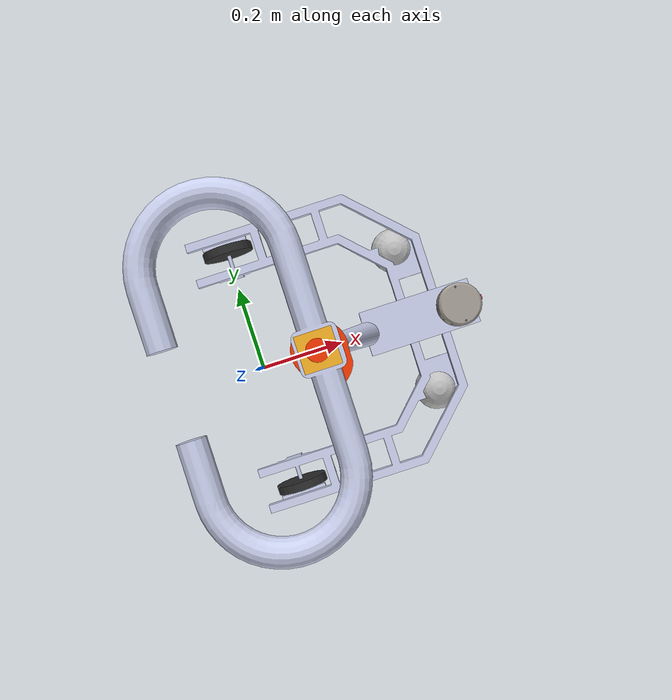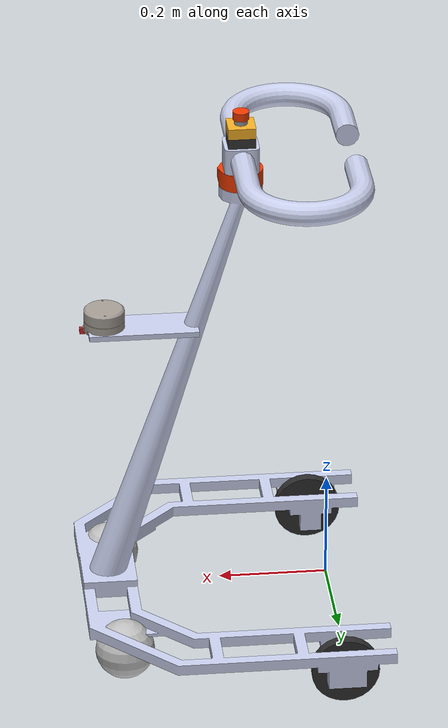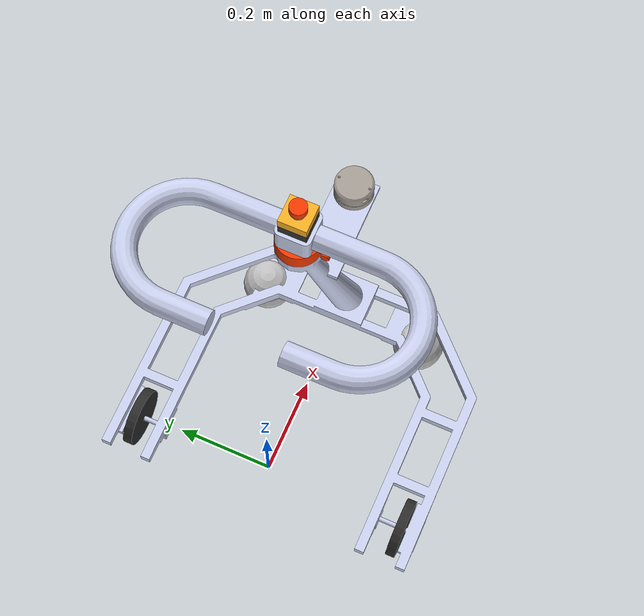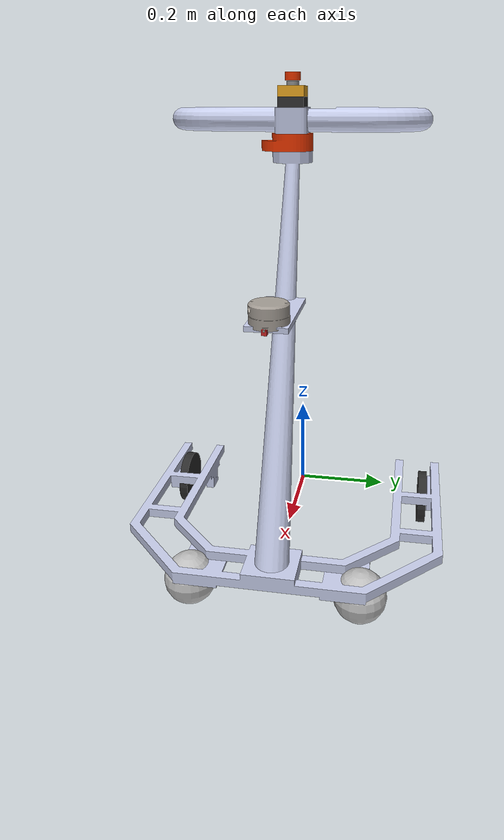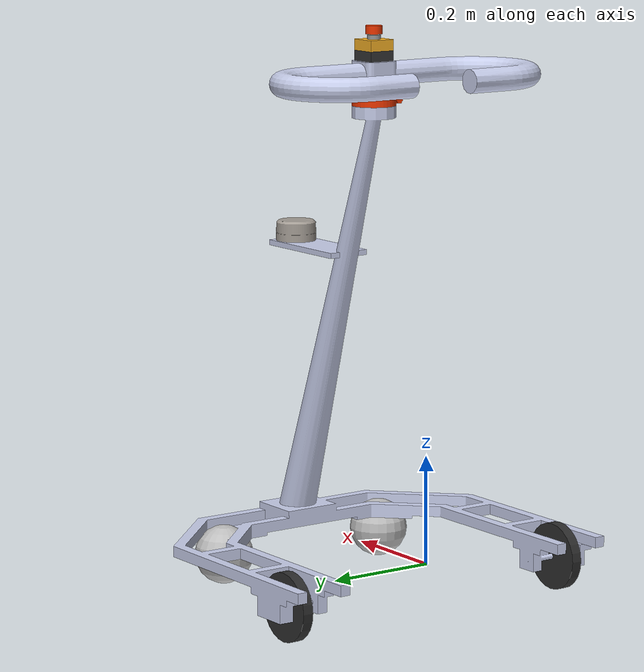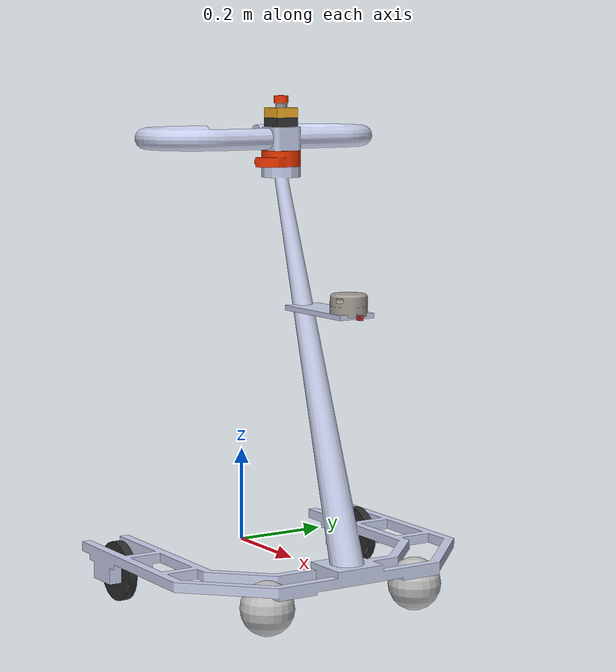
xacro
<?xml version="1.0" encoding="UTF-8"?>
<robot name="walker" xmlns:xacro="http://ros.org/wiki/xacro">
    <xacro:arg name="robot_namespace" default="walker" />

    <!-- Included URDF/XACRO Files -->
    <xacro:include filename="$(find walker_description)/urdf/accessories/webcam_c930e.urdf.xacro"/>
    <xacro:include filename="$(find walker_description)/urdf/accessories/ydlidar_g4.urdf.xacro" />
    <xacro:include filename="$(find walker_description)/urdf/accessories/estop.urdf.xacro" />

    <!-- Gazebo plugin -->
    <xacro:include filename="$(find walker_description)/urdf/walker.gazebo" />

    <!-- Inertia matrices -->
    <xacro:include filename="$(find walker_description)/urdf/macros.xacro" />

    <xacro:property name="M_PI" value="3.1415926"/>
    <xacro:property name="rear_wheel_mass" value="1.0" />
    <xacro:property name="rear_wheel_radius" value="0.0625" />
    <xacro:property name="rear_wheel_width" value="0.02" />

    <xacro:property name="front_wheel_mass" value="0.5" />
    <xacro:property name="front_wheel_radius" value="0.025" />

    <xacro:property name="ydlidar_xyz" value="$(optenv HUSKY_YDLIDAR_XYZ 0.41 0.0 0.535)" />
    <xacro:property name="ydlidar_rpy" value="$(optenv HUSKY_YDLIDAR_RPY 0.0 0.0 3.1415926)" />
    <xacro:property name="webcam_xyz" value="$(optenv HUSKY_WEBCAM_XYZ -4.0e-02 0 -3.25e-02)" />
    <xacro:property name="webcam_rpy" value="$(optenv HUSKY_WEBCAM_RPY 0 0 3.1415926)" />

    <!-- Base link -->
    <link name="base_link">
        <inertial>
            <origin xyz="0.26321 0.0 0.15671" rpy="0 0 0" />
            <mass value="7.0" />
            <inertia ixx="0.29508" ixy="1.3791E-07" ixz="0.001404"
                    iyy="0.26107" iyz="-2.7608E-07" izz="0.1867" />
        </inertial>
        <visual>
            <origin xyz="0 0 0" rpy="0 0 0" />
            <geometry>
                <mesh filename="package://walker_description/meshes/base_link.STL" />
            </geometry>
            <material name="">
                <color rgba="0.79216 0.81961 0.93333 1" />
            </material>
        </visual>
        <collision>
            <origin xyz="0 0 0" rpy="0 0 0" />
            <geometry>
                <mesh filename="package://walker_description/meshes/base_link.STL" />
            </geometry>
        </collision>
    </link>

    <!-- Footprint -->
    <link name="base_footprint" />
    <joint name="footprint_joint" type="fixed">
        <origin xyz="0 0 -0.15671" rpy="0 0 0" />
        <parent link="base_link"/>
        <child link="base_footprint"/>
    </joint>

    <!-- Rear right wheel link & joint -->
    <link name="rear_right_wheel_link">
        <inertial>
            <origin xyz="0 0 0" rpy="0 0 0" />
            <mass value="${rear_wheel_mass}" />
            <xacro:cylinder_inertia m="${rear_wheel_mass}" r="${rear_wheel_radius}" h="${rear_wheel_width}" />
        </inertial>
        <visual>
            <origin xyz="0 0 0" rpy="0 0 0" />
            <geometry>
                <cylinder length="${rear_wheel_width}" radius="${rear_wheel_radius}"/>
            </geometry>
            <material name="">
                <color rgba="0.175 0.175 0.175 1" />
            </material>
        </visual>
        <collision>
            <origin xyz="0 0 0" rpy="0 0 0" />
            <geometry>
                <cylinder length="${rear_wheel_width}" radius="${rear_wheel_radius}"/>
            </geometry>
        </collision>
    </link>
    <joint name="rear_right_wheel_joint" type="continuous">
        <origin xyz="0 -0.301 -0.03" rpy="-1.5708 0 0" />
        <parent link="base_link" />
        <child link="rear_right_wheel_link" />
        <axis xyz="0 0 1" />
        <joint_properties damping="1.0" friction="0.0"/>
        <limit effort="100" velocity="100"/>
    </joint>

    <!-- Rear left wheel link & joint -->
    <link name="rear_left_wheel_link">
        <inertial>
            <origin xyz="0 0 0" rpy="0 0 0" />
            <mass value="${rear_wheel_mass}" />
            <xacro:cylinder_inertia m="${rear_wheel_mass}" r="${rear_wheel_radius}" h="${rear_wheel_width}" />
        </inertial>
        <visual>
            <origin xyz="0 0 0" rpy="0 0 0" />
            <geometry>
                <cylinder length="${rear_wheel_width}" radius="${rear_wheel_radius}"/>
            </geometry>
            <material name="">
                <color rgba="0.175 0.175 0.175 1" />
            </material>
        </visual>
        <collision>
            <origin xyz="0 0 0" rpy="0 0 0" />
            <geometry>
                <cylinder length="${rear_wheel_width}" radius="${rear_wheel_radius}"/>
            </geometry>
        </collision>
    </link>
    <joint name="rear_left_wheel_joint" type="continuous">
        <origin xyz="0 0.301 -0.03" rpy="-1.5708 0 0" />
        <parent link="base_link" />
        <child link="rear_left_wheel_link" />
        <axis xyz="0 0 1" />
        <joint_properties damping="1.0" friction="0.0"/>
        <limit effort="100" velocity="100"/>
    </joint>

    <!-- Force sensor link & joint -->
    <link name="force_sensor_link">
        <inertial>
            <origin xyz="0.0041884 0.0015924 0.015541" rpy="0 0 0" />
            <mass value="0.5" />
            <xacro:cylinder_inertia m="0.5" r="0.04" h="0.03" />
        </inertial>
        <visual>
            <origin xyz="0 0 0" rpy="0 0 0" />
            <geometry>
                <mesh filename="package://walker_description/meshes/force_sensor_link.STL" />
            </geometry>
            <material name="">
                <color rgba="0.9569 0.2196 0 1" />
            </material>
        </visual>
        <collision>
            <origin xyz="0 0 0" rpy="0 0 0" />
            <geometry>
                <mesh filename="package://walker_description/meshes/force_sensor_link.STL" />
            </geometry>
        </collision>
    </link>
    <joint name="force_sensor_joint" type="fixed"> <!-- revolute -->
        <origin xyz="0.16109 0 0.81585" rpy="0 0 -1.5708" />
        <parent link="base_link" />
        <child link="force_sensor_link" />
        <axis xyz="0 0 1" />
        <limit lower="0" velocity="100" upper="0" effort="100" />
        <dynamics damping="0.0" friction="0.0"/>
    </joint>

    <!-- Handrail link -->
    <link name="handrail_link">
        <inertial>
            <origin xyz="-0.083491 0 -2.9354E-05" rpy="0 0 0" />
            <mass value="3.3" />
            <inertia ixx="0.048123" ixy="-3.5053E-19" ixz="4.1278E-06"
                    iyy="0.012317" iyz="-1.8415E-19" izz="0.06002" />
        </inertial>
        <visual>
            <origin xyz="0 0 0" rpy="0 0 0" />
            <geometry>
                <mesh filename="package://walker_description/meshes/handrail_link.STL" />
            </geometry>
            <material name="">
                <color rgba="0.79216 0.81961 0.93333 1" />
            </material>
        </visual>
        <collision>
            <origin xyz="0 0 0" rpy="0 0 0" />
            <geometry>
                <mesh filename="package://walker_description/meshes/handrail_link.STL" />
            </geometry>
        </collision>
    </link>
    <joint name="handrail_joint" type="fixed"> <!-- revolute -->
        <origin xyz="0 0 0.0565" rpy="0 0 1.5708" />
        <parent link="force_sensor_link" />
        <child link="handrail_link" />
        <axis xyz="0 0 1" />
        <limit lower="0" velocity="100" upper="0" effort="100" />
        <dynamics damping="1.0"/>
    </joint>

    <!-- Front right caster wheel link & joint-->
    <link name="front_right_caster_wheel_link">
        <inertial>
            <origin xyz="0 0 0" rpy="0 0 0" />
            <mass value="${front_wheel_mass}" />
            <xacro:sphere_inertia m="${front_wheel_mass}" r="${front_wheel_radius}"/>
        </inertial>
        <visual>
            <origin xyz="0 0 0" rpy="0 0 0" />
            <geometry>
                <sphere radius="${front_wheel_radius + 0.03}"/>
            </geometry>
            <material name="">
                <color rgba="0.75294 0.75294 0.75294 1" />
            </material>
        </visual>
        <collision>
            <origin xyz="0 0 0" rpy="0 0 0" />
            <geometry>
                <sphere radius="${front_wheel_radius + 0.03}"/>
            </geometry>
        </collision>
    </link>
    <joint name="front_right_caster_wheel_joint" type="fixed">
        <origin xyz="0.39293 -0.17843 -0.037217" rpy="0 0 0" />
        <parent link="base_link" />
        <child link="front_right_caster_wheel_link" />
        <axis xyz="0 0 0" />
    </joint>

    <!-- Front left caster wheel link & joint-->
    <link name="front_left_caster_wheel_link">
        <inertial>
            <origin xyz="0 0 0" rpy="0 0 0" />
            <mass value="${front_wheel_mass}" />
            <xacro:sphere_inertia m="${front_wheel_mass}" r="${front_wheel_radius}"/>
        </inertial>
        <visual>
            <origin xyz="0 0 0" rpy="0 0 0" />
            <geometry>
                <sphere radius="${front_wheel_radius + 0.03}"/>
            </geometry>
            <material name="">
                <color rgba="0.75294 0.75294 0.75294 1" />
            </material>
        </visual>
        <collision>
            <origin xyz="0 0 0" rpy="0 0 0" />
            <geometry>
                <sphere radius="${front_wheel_radius + 0.03}"/>
            </geometry>
        </collision>
    </link>
    <joint name="front_left_caster_wheel_joint" type="fixed">
        <origin xyz="0.39293 0.17843 -0.037217" rpy="0 0 0" />
        <parent link="base_link" />
        <child link="front_left_caster_wheel_link" />
        <axis xyz="0 0 0" />
    </joint>

    <!-- YDLiDAR G4 plugin -->
    <xacro:ydlidar_g4 frame="laser" topic="scan" min_angle="${M_PI / 4}" max_angle="${M_PI / 4 * 7}" robot_namespace="$(arg robot_namespace)"/>
    <joint name="ydlidar_mount_joint" type="fixed">
        <origin xyz="${ydlidar_xyz}" rpy="${ydlidar_rpy}" />
        <parent link="base_link" />
        <child link="laser_base" />
    </joint>

    <!-- Logitech C930e webcam -->
    <xacro:webcam_c930e frame="camera" topic="usb_cam" robot_namespace="$(arg robot_namespace)"/>
    <joint name="webcam_mount_joint" type="fixed">
        <origin xyz="${webcam_xyz}" rpy="${webcam_rpy}" />
        <parent link="laser_link" />
        <child link="camera_link" />
    </joint>

    <!-- Sensor mount -->
    <link name='sensor_mount_link'>
        <inertial>
            <origin xyz="0.1 0 0" rpy="0 0 0" />
            <mass value="0.1" />
            <xacro:box_inertia m="0.1" x="0.2" y="0.08" z="0.01"/>
        </inertial>
        <collision name='collision'>
            <origin xyz="0.1 0 0" rpy="0 0 0" />
            <geometry>
                <box size="0.2 0.08 0.01" />
            </geometry>
        </collision>
        <visual name='visual'>
            <origin xyz="0.1 0 0" rpy="0 0 0" />
            <geometry>
                <box size="0.2 0.08 0.01" />
            </geometry>
            <material name="">
                <color rgba="0.79216 0.81961 0.93333 1" />
            </material>
        </visual>
    </link>
    <joint name="sensor_mount_joint" type="fixed">
        <origin xyz="0.24 0 0.535" rpy="0 0 0" />
        <parent link="base_link"/>
        <child link="sensor_mount_link"/>
    </joint>

    <!-- E-stop -->
    <xacro:estop frame="estop" />
    <joint name="estop_joint1" type="fixed">
        <origin xyz="0.161 0 0.905" rpy="0 0 0" />
        <parent link="base_link" />
        <child link="estop_base" />
    </joint>

</robot>

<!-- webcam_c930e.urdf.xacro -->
<robot xmlns:xacro="http://www.ros.org/wiki/xacro">
    <!-- Size of square 'camera' box -->
    <xacro:property name="camera_size" value="0.01" />

    <xacro:macro name="webcam_c930e" params="frame:=camera topic:=usb_cam update_rate:=30.0
                robot_namespace:=/" >
        <link name="${frame}_link">
            <collision>
                <origin xyz="0 0 0" rpy="0 0 0"/>
                <geometry>
                    <box size="${camera_size} ${camera_size} ${camera_size}"/>
                </geometry>
            </collision>
            <visual>
                <origin xyz="0 0 0" rpy="0 0 0"/>
                <geometry>
                    <box size="${camera_size} ${camera_size} ${camera_size}"/>
                </geometry>
                <material name="red"/>
            </visual>
            <inertial>
                <mass value="0.162" />
                <origin xyz="0 0 0" rpy="0 0 0"/>
                <inertia ixx="1e-6" ixy="0" ixz="0" iyy="1e-6" iyz="0" izz="1e-6" />
            </inertial>
        </link>

        <!-- Dummy link for gazebo camera frame correlation -->
        <link name="${frame}_optical_frame" />
        <joint name="${frame}_optical_joint" type="fixed">
            <origin xyz="0 0 0" rpy="-1.5707963267948966 0 -1.5707963267948966"/>
            <parent link="${frame}_link"/>
            <child link="${frame}_optical_frame"/>
        </joint>

        <gazebo reference="${frame}_link">
            <sensor type="camera" name="camera1">
                <update_rate>${update_rate}</update_rate>
                <camera name="head">
                    <horizontal_fov>1.432915291</horizontal_fov>
                    <vertical_fov>0.911061854</vertical_fov>
                    <image>
                        <width>640</width>
                        <height>480</height>
                        <format>R8G8B8</format>
                    </image>
                    <clip>
                        <near>0.01</near>
                        <far>30</far>
                    </clip>
                    <noise>
                        <type>gaussian</type>
                        <mean>0.0</mean>
                        <stddev>0.007</stddev>
                    </noise>
                </camera>
                <plugin name="gazebo_ros_${frame}" filename="libgazebo_ros_camera.so">
                    <alwaysOn>true</alwaysOn>
                    <updateRate>0.0</updateRate>
                    <cameraName>${topic}</cameraName>
                    <imageTopicName>image_raw</imageTopicName>
                    <cameraInfoTopicName>camera_info</cameraInfoTopicName>
                    <frameName>/${frame}_optical_frame</frameName>
                    <hackBaseline>0.07</hackBaseline>
                    <distortionK1>0.00000001</distortionK1>
                    <distortionK2>0.00000001</distortionK2>
                    <distortionK3>0.00000001</distortionK3>
                    <distortionT1>0.00000001</distortionT1>
                    <distortionT2>0.00000001</distortionT2>
                    <CxPrime>0</CxPrime>
                    <Cx>0</Cx>
                    <Cy>0</Cy>
                    <focalLength>0</focalLength>
                    <robotNamespace>$(arg robot_namespace)</robotNamespace>
                </plugin>
            </sensor>
        </gazebo>

    </xacro:macro>

</robot>

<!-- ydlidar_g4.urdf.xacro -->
<robot xmlns:xacro="http://www.ros.org/wiki/xacro">

    <!-- Gazebo YDLiDAR G4 plugin -->
    <xacro:macro name="ydlidar_g4" params="frame:=laser topic:=scan sample_size:=750 update_rate:=11
               min_angle:=-3.1415926 max_angle:=3.1415926 min_range:=0.26 max_range:=16.0 robot_namespace:=/" >
        <link name="${frame}_base">
            <inertial>
                <origin xyz="-0.00029774 0.0066667 0.00013047" rpy="0 0 0" />
                <mass value="0.15717" />
                <inertia
                            ixx="6.7885E-05"
                            ixy="-1.3987E-07"
                            ixz="-8.1554E-07"
                            iyy="0.00013173"
                            iyz="-9.0932E-08"
                            izz="7.1972E-05" />
            </inertial>
            <visual>
                <origin xyz="0 0 0" rpy="0 0 0" />
                <geometry>
                    <mesh filename="package://ydlidar/meshes/ydlidar.dae" />
                </geometry>
                <material name="">
                    <color rgba="0.64706 0.61961 0.58824 1" />
                </material>
            </visual>
            <collision>
                <origin xyz="0 0 0" rpy="0 0 0" />
                <geometry>
                    <mesh filename="package://ydlidar/meshes/ydlidar.dae" />
                </geometry>
            </collision>
        </link>
        <link name="${frame}_link">
            <inertial>
                <origin xyz="-0.00036659 0.00064155 -0.00027052" rpy="0 0 0" />
                <mass value="0.25482" />
                <inertia
                            ixx="8.9194E-05"
                            ixy="1.8116E-07"
                            ixz="3.6435E-08"
                            iyy="0.00018279"
                            iyz="2.423E-07"
                            izz="0.00011103" />
            </inertial>
        </link>
        <joint name="${frame}_joint" type="fixed">
            <origin xyz="0 0 0.03172" rpy="0 0 0" />
            <parent link="${frame}_base" />
            <child link="${frame}_link" />
            <axis xyz="0 0 0" />
        </joint>

        <!-- Link to gazebo plugin -->
        <gazebo reference="${frame}_link">
            <turnGravityOff>true</turnGravityOff>
            <sensor type="ray" name="${frame}">
                <update_rate>${update_rate}</update_rate>
                <pose>0 0 0 0 0 0</pose>
                <visualize>false</visualize>
                <ray>
                    <scan>
                        <horizontal>
                            <samples>${sample_size}</samples>
                            <resolution>1</resolution>
                            <min_angle>${min_angle}</min_angle>
                            <max_angle>${max_angle}</max_angle>
                        </horizontal>
                    </scan>
                    <range>
                        <min>${min_range}</min>
                        <max>${max_range}</max>
                        <resolution>0.26</resolution>
                    </range>
                    <noise>
                        <type>gaussian</type>
                        <mean>0.0</mean>
                        <stddev>0.002</stddev>
                    </noise>
                </ray>
                <plugin name="gazebo_ros_${frame}" filename="libgazebo_ros_laser.so">
                    <updateRate>${update_rate}</updateRate>
                    <topicName>${topic}</topicName>
                    <frameName>/${frame}_link</frameName>
                    <robotNamespace>$(arg robot_namespace)</robotNamespace>
                </plugin>
            </sensor>
        </gazebo>
    </xacro:macro>
</robot>

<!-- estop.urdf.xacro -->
<robot xmlns:xacro="http://www.ros.org/wiki/xacro">

    <!-- Inertia matrices -->
    <xacro:include filename="$(find walker_description)/urdf/macros.xacro" />

    <!-- Gazebo YDLiDAR G4 plugin -->
    <xacro:macro name="estop" params="frame:=etsop" >
        <link name="${frame}_button1">
            <inertial>
                <origin xyz="0 0 0" rpy="0 0 0" />
                <mass value="0.1" />
                <xacro:cylinder_inertia m="0.1" r="0.012" h="0.012" />
            </inertial>
            <visual name='${frame}_button1_visual'>
                <origin xyz="0 0 0" rpy="0 0 0" />
                <geometry>
                    <cylinder length="0.012" radius="0.012"/>
                </geometry>
                <material name="">
                    <color rgba="0.6 0.6 0.6 1" />
                </material>
            </visual>
            <collision name='collision'>
                <origin xyz="0 0 0" rpy="0 0 0" />
                <geometry>
                    <cylinder length="0.012" radius="0.012"/>
                </geometry>
            </collision>
        </link>
        <gazebo reference="${frame}_button1">
            <material>Gazebo/White</material>
        </gazebo>

        <link name="${frame}_button2">
            <inertial>
                <origin xyz="0 0 0" rpy="0 0 0" />
                <mass value="0.1" />
                <xacro:cylinder_inertia m="0.1" r="0.015" h="0.015" />
            </inertial>
            <visual name='${frame}_button2_visual'>
                <origin xyz="0 0 0" rpy="0 0 0" />
                <geometry>
                    <cylinder length="0.015" radius="0.015"/>
                </geometry>
                <material name="">
                    <color rgba="0.9569 0.2196 0 1" />
                </material>
            </visual>
            <collision name='collision'>
                <origin xyz="0 0 0" rpy="0 0 0" />
                <geometry>
                    <cylinder length="0.015" radius="0.015"/>
                </geometry>
            </collision>
        </link>
        <gazebo reference="${frame}_button2">
            <material>Gazebo/Red</material>
        </gazebo>

        <joint name="${frame}_button2_joint" type="fixed">
            <origin xyz="0 0 0.015" rpy="0 0 0" />
            <parent link="${frame}_button1" />
            <child link="${frame}_button2" />
        </joint>

        <joint name="${frame}_button1_joint" type="fixed">
            <origin xyz="0 0 0.012" rpy="0 0 0" />
            <parent link="${frame}_topbase" />
            <child link="${frame}_button1" />
            <axis xyz="0 0 0" />
        </joint>

        <link name="${frame}_base">
            <inertial>
                <origin xyz="0 0 0" rpy="0 0 0" />
                <mass value="0.1" />
                <xacro:box_inertia m="0.1" x="0.05" y="0.05" z="0.02"/>
            </inertial>
            <visual name='${frame}_base_visual'>
                <origin xyz="0 0 0" rpy="0 0 0" />
                <geometry>
                    <box size="0.05 0.05 0.02" />
                </geometry>
                <material name="">
                    <color rgba="0.2 0.2 0.2 1" />
                </material>
            </visual>
            <collision name='collision'>
                <origin xyz="0 0 0" rpy="0 0 0" />
                <geometry>
                    <box size="0.05 0.05 0.02" />
                </geometry>
            </collision>
        </link>
        <gazebo reference="${frame}_base">
            <material>Gazebo/DarkGrey</material>
        </gazebo>

        <link name="${frame}_topbase">
            <inertial>
                <origin xyz="0.0 0 0" rpy="0 0 0" />
                <mass value="0.1" />
                <xacro:box_inertia m="0.1" x="0.05" y="0.05" z="0.02"/>
            </inertial>
            <visual name='${frame}_topbase_visual'>
                <origin xyz="0 0 0" rpy="0 0 0" />
                <geometry>
                    <box size="0.05 0.05 0.02" />
                </geometry>
                <material name="">
                    <color rgba="0.964 0.69 0.141 1" />
                </material>
            </visual>
            <collision name='collision'>
                <origin xyz="0 0 0" rpy="0 0 0" />
                <geometry>
                    <box size="0.05 0.05 0.02" />
                </geometry>
            </collision>
        </link>
        <gazebo reference="${frame}_topbase">
            <material>Gazebo/Orange</material>
        </gazebo>
        <joint name="${frame}_base_joint" type="fixed">
            <origin xyz="0 0 0.02" rpy="0 0 0" />
            <parent link="${frame}_base" />
            <child link="${frame}_topbase" />
            <axis xyz="0 0 0" />
        </joint>

    </xacro:macro>

</robot>
